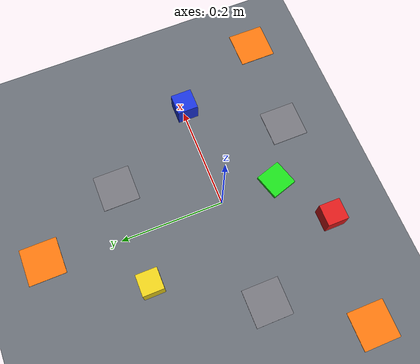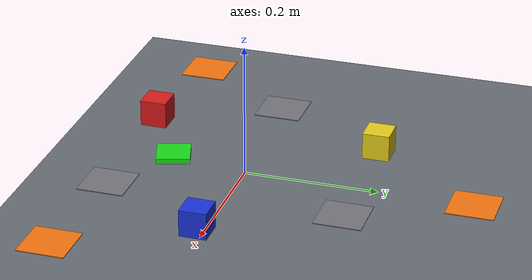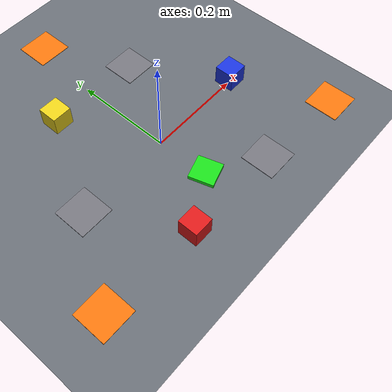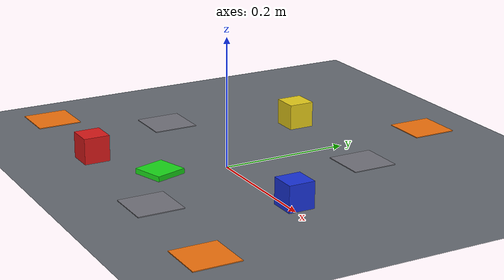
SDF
<sdf version="1.8">
 <world name="robocraft">
  <physics name="1ms" type="ignored">
   <max_step_size>0.001</max_step_size>
   <real_time_factor>1.0</real_time_factor>
  </physics>
  <plugin filename="ignition-gazebo-physics-system" name="ignition::gazebo::systems::Physics"/>
  <plugin filename="ignition-gazebo-user-commands-system" name="ignition::gazebo::systems::UserCommands"/>
  <plugin filename="ignition-gazebo-scene-broadcaster-system" name="ignition::gazebo::systems::SceneBroadcaster"/>
  <plugin filename="ignition-gazebo-sensors-system" name="ignition::gazebo::systems::Sensors">
   <render_engine>ogre2</render_engine>
  </plugin>
  <scene><ambient>0.6 0.6 0.6 1</ambient><background>0.75 0.8 0.85 1</background><grid>false</grid></scene>
  <light type="directional" name="sun">
   <pose>0 0 10 0 0 0</pose>
   <diffuse>0.9 0.9 0.9 1</diffuse>
   <specular>0.2 0.2 0.2 1</specular>
   <direction>-0.4 0.3 -0.9</direction>
  </light>
  <light type="point" name="cell_lamp">
   <pose>0.3 -0.3 1.5 0 0 0</pose>
   <diffuse>0.5 0.5 0.5 1</diffuse>
   <attenuation>
    <range>6</range>
    <constant>0.5</constant>
    <linear>0.05</linear>
    <quadratic>0.01</quadratic>
   </attenuation>
  </light>
  <model name="floor">
   <static>true</static>
   <link name="link">
    <collision name="col"><geometry><plane><normal>0 0 1</normal><size>6 6</size></plane></geometry></collision>
    <visual name="v">
     <geometry><plane><normal>0 0 1</normal><size>6 6</size></plane></geometry>
     <material><ambient>0.35 0.37 0.4 1</ambient><diffuse>0.4 0.42 0.45 1</diffuse></material>
    </visual>
   </link>
  </model>
  <model name="plate_support">
   <static>true</static>
   <pose>0 0 0.005 0 0 0</pose>
   <link name="link">
    <collision name="col">
     <geometry><cylinder><radius>0.40</radius><length>0.010</length></cylinder></geometry>
     <surface><friction><ode><mu>0.3</mu><mu2>0.3</mu2></ode></friction></surface>
    </collision>
   </link>
  </model>
  <model name="overhead_camera">
   <static>true</static>
   <pose>0 0 1.20 0 1.5707963 0</pose>
   <link name="link">
    <sensor name="overhead_camera" type="camera">
     <always_on>true</always_on>
     <update_rate>5</update_rate>
     <topic>overhead_camera/image</topic>
     <camera>
      <horizontal_fov>0.9</horizontal_fov>
      <image><width>640</width><height>640</height><format>R8G8B8</format></image>
      <clip><near>0.05</near><far>5</far></clip>
     </camera>
    </sensor>
   </link>
  </model>
  <model name="showcase_camera">
   <static>true</static>
   <pose>0.62 -0.62 0.62 0 0.56 2.356</pose>
   <link name="link">
    <sensor name="showcase_camera" type="camera">
     <always_on>true</always_on>
     <update_rate>2</update_rate>
     <topic>showcase_camera/image</topic>
     <camera>
      <horizontal_fov>1.0</horizontal_fov>
      <image><width>960</width><height>600</height><format>R8G8B8</format></image>
      <clip><near>0.05</near><far>6</far></clip>
     </camera>
    </sensor>
   </link>
  </model>
  <model name="part_red">
   <pose>-0.1032 -0.1726 0.030 0 0 0</pose>
   <link name="grasp_body">
    <inertial>
     <mass>0.05</mass>
     <inertia><ixx>1.3e-5</ixx><iyy>1.3e-5</iyy><izz>1.3e-5</izz><ixy>0</ixy><ixz>0</ixz><iyz>0</iyz></inertia>
    </inertial>
    <visual name="v">
     <geometry><box><size>0.04 0.04 0.04</size></box></geometry>
     <material><ambient>0.85 0.1 0.1 1</ambient><diffuse>0.85 0.1 0.1 1</diffuse></material>
    </visual>
    <collision name="col">
     <geometry><box><size>0.04 0.04 0.04</size></box></geometry>
     <surface><friction><ode><mu>0.6</mu><mu2>0.6</mu2></ode></friction></surface>
    </collision>
   </link>
  </model>
  <model name="part_blue">
   <pose>0.2011 -0.0031 0.030 0 0 0</pose>
   <link name="grasp_body">
    <inertial>
     <mass>0.05</mass>
     <inertia><ixx>1.3e-5</ixx><iyy>1.3e-5</iyy><izz>1.3e-5</izz><ixy>0</ixy><ixz>0</ixz><iyz>0</iyz></inertia>
    </inertial>
    <visual name="v">
     <geometry><box><size>0.04 0.04 0.04</size></box></geometry>
     <material><ambient>0.1 0.2 0.85 1</ambient><diffuse>0.1 0.2 0.85 1</diffuse></material>
    </visual>
    <collision name="col">
     <geometry><box><size>0.04 0.04 0.04</size></box></geometry>
     <surface><friction><ode><mu>0.6</mu><mu2>0.6</mu2></ode></friction></surface>
    </collision>
   </link>
  </model>
  <model name="part_yellow">
   <pose>-0.0978 0.1757 0.030 0 0 0</pose>
   <link name="grasp_body">
    <inertial>
     <mass>0.05</mass>
     <inertia><ixx>1.3e-5</ixx><iyy>1.3e-5</iyy><izz>1.3e-5</izz><ixy>0</ixy><ixz>0</ixz><iyz>0</iyz></inertia>
    </inertial>
    <visual name="v">
     <geometry><box><size>0.04 0.04 0.04</size></box></geometry>
     <material><ambient>0.9 0.8 0.1 1</ambient><diffuse>0.9 0.8 0.1 1</diffuse></material>
    </visual>
    <collision name="col">
     <geometry><box><size>0.04 0.04 0.04</size></box></geometry>
     <surface><friction><ode><mu>0.6</mu><mu2>0.6</mu2></ode></friction></surface>
    </collision>
   </link>
  </model>
  <model name="green_obstacle">
   <static>true</static>
   <pose>0.0 -0.110 0.014 0 0 0.3</pose>
   <link name="link">
    <visual name="v">
     <geometry><box><size>0.05 0.05 0.008</size></box></geometry>
     <material><ambient>0.1 0.8 0.1 1</ambient><diffuse>0.1 0.85 0.1 1</diffuse></material>
    </visual>
    <collision name="col"><geometry><box><size>0.05 0.05 0.008</size></box></geometry></collision>
   </link>
  </model>
  <model name="bin_good_arm1">
   <static>true</static>
   <pose>0.1032 -0.1726 0.0106 0 0 0</pose>
   <link name="link">
    <visual name="v">
     <geometry><box><size>0.070 0.070 0.0012</size></box></geometry>
     <material><ambient>0.45 0.45 0.48 1</ambient><diffuse>0.45 0.45 0.48 1</diffuse></material>
    </visual>
   </link>
  </model>
  <model name="bin_reject_arm1">
   <static>true</static>
   <pose>0.2900 -0.1848 0.0106 0 0 0</pose>
   <link name="link">
    <visual name="v">
     <geometry><box><size>0.070 0.070 0.0012</size></box></geometry>
     <material><ambient>0.95 0.45 0.05 1</ambient><diffuse>0.95 0.45 0.05 1</diffuse></material>
    </visual>
   </link>
  </model>
  <model name="bin_good_arm2">
   <static>true</static>
   <pose>0.0978 0.1757 0.0106 0 0 0</pose>
   <link name="link">
    <visual name="v">
     <geometry><box><size>0.070 0.070 0.0012</size></box></geometry>
     <material><ambient>0.45 0.45 0.48 1</ambient><diffuse>0.45 0.45 0.48 1</diffuse></material>
    </visual>
   </link>
  </model>
  <model name="bin_reject_arm2">
   <static>true</static>
   <pose>0.0150 0.3435 0.0106 0 0 0</pose>
   <link name="link">
    <visual name="v">
     <geometry><box><size>0.070 0.070 0.0012</size></box></geometry>
     <material><ambient>0.95 0.45 0.05 1</ambient><diffuse>0.95 0.45 0.05 1</diffuse></material>
    </visual>
   </link>
  </model>
  <model name="bin_good_arm3">
   <static>true</static>
   <pose>-0.2011 -0.0031 0.0106 0 0 0</pose>
   <link name="link">
    <visual name="v">
     <geometry><box><size>0.070 0.070 0.0012</size></box></geometry>
     <material><ambient>0.45 0.45 0.48 1</ambient><diffuse>0.45 0.45 0.48 1</diffuse></material>
    </visual>
   </link>
  </model>
  <model name="bin_reject_arm3">
   <static>true</static>
   <pose>-0.3050 -0.1588 0.0106 0 0 0</pose>
   <link name="link">
    <visual name="v">
     <geometry><box><size>0.070 0.070 0.0012</size></box></geometry>
     <material><ambient>0.95 0.45 0.05 1</ambient><diffuse>0.95 0.45 0.05 1</diffuse></material>
    </visual>
   </link>
  </model>
 </world>
</sdf>
